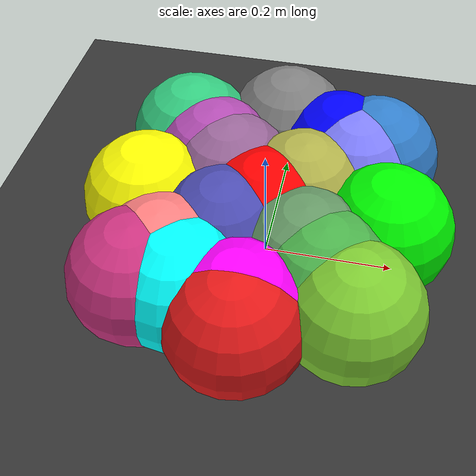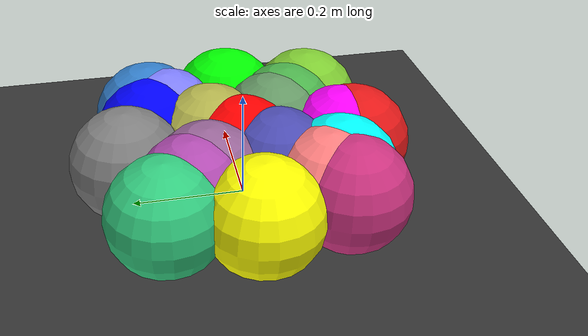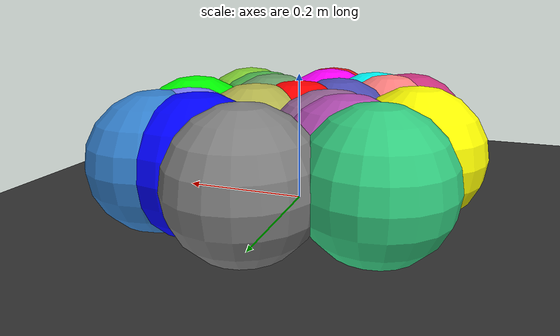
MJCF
<mujoco model="twenty_contacts">
    <option gravity="0 0 -9.81" integrator="Euler" timestep="0.01"/>
    <size njmax="200" nconmax="200"/>

    <worldbody>
        <!-- Static floor -->
        <geom name="floor" type="plane" pos="0 0 0" size="50 50 0.1" rgba="0.2 0.2 0.2 1" condim="3"/>

        <!-- Cluster of overlapping spheres -->
        <body name="sphere_0" pos="0 0 0.09">
            <geom type="sphere" size="0.1" rgba="1 0 0 1"/>
            <freejoint/>
        </body>

        <body name="sphere_1" pos="0.18 0 0.09">
            <geom type="sphere" size="0.1" rgba="0 1 0 1"/>
            <freejoint/>
        </body>

        <body name="sphere_2" pos="0.09 0.15 0.09">
            <geom type="sphere" size="0.1" rgba="0 0 1 1"/>
            <freejoint/>
        </body>

        <body name="sphere_3" pos="-0.18 0 0.09">
            <geom type="sphere" size="0.1" rgba="1 1 0 1"/>
            <freejoint/>
        </body>

        <body name="sphere_4" pos="0 -0.18 0.09">
            <geom type="sphere" size="0.1" rgba="1 0 1 1"/>
            <freejoint/>
        </body>

        <body name="sphere_5" pos="-0.09 -0.15 0.09">
            <geom type="sphere" size="0.1" rgba="0 1 1 1"/>
            <freejoint/>
        </body>

        <body name="sphere_6" pos="0.12 0.12 0.09">
            <geom type="sphere" size="0.1" rgba="0.5 0.5 1 1"/>
            <freejoint/>
        </body>

        <body name="sphere_7" pos="-0.12 -0.12 0.09">
            <geom type="sphere" size="0.1" rgba="1 0.5 0.5 1"/>
            <freejoint/>
        </body>

        <body name="sphere_8" pos="0.1 -0.1 0.09">
            <geom type="sphere" size="0.1" rgba="0.3 0.7 0.3 1"/>
            <freejoint/>
        </body>

        <body name="sphere_9" pos="-0.1 0.1 0.09">
            <geom type="sphere" size="0.1" rgba="0.7 0.3 0.7 1"/>
            <freejoint/>
        </body>

        <body name="sphere_10" pos="0.05 0.05 0.09">
            <geom type="sphere" size="0.1" rgba="0.7 0.7 0.3 1"/>
            <freejoint/>
        </body>

        <body name="sphere_11" pos="-0.05 -0.05 0.09">
            <geom type="sphere" size="0.1" rgba="0.3 0.3 0.7 1"/>
            <freejoint/>
        </body>

        <body name="sphere_12" pos="0.07 -0.07 0.09">
            <geom type="sphere" size="0.1" rgba="0.4 0.6 0.4 1"/>
            <freejoint/>
        </body>

        <body name="sphere_13" pos="-0.07 0.07 0.09">
            <geom type="sphere" size="0.1" rgba="0.6 0.4 0.6 1"/>
            <freejoint/>
        </body>

        <body name="sphere_14" pos="0.15 0.15 0.09">
            <geom type="sphere" size="0.1" rgba="0.2 0.5 0.8 1"/>
            <freejoint/>
        </body>

        <body name="sphere_15" pos="-0.15 -0.15 0.09">
            <geom type="sphere" size="0.1" rgba="0.8 0.2 0.5 1"/>
            <freejoint/>
        </body>

        <body name="sphere_16" pos="0.15 -0.15 0.09">
            <geom type="sphere" size="0.1" rgba="0.5 0.8 0.2 1"/>
            <freejoint/>
        </body>

        <body name="sphere_17" pos="-0.15 0.15 0.09">
            <geom type="sphere" size="0.1" rgba="0.2 0.8 0.5 1"/>
            <freejoint/>
        </body>

        <body name="sphere_18" pos="0 0.2 0.09">
            <geom type="sphere" size="0.1" rgba="0.5 0.5 0.5 1"/>
            <freejoint/>
        </body>

        <body name="sphere_19" pos="0 -0.2 0.09">
            <geom type="sphere" size="0.1" rgba="0.9 0.1 0.1 1"/>
            <freejoint/>
        </body>
    </worldbody>
</mujoco>
